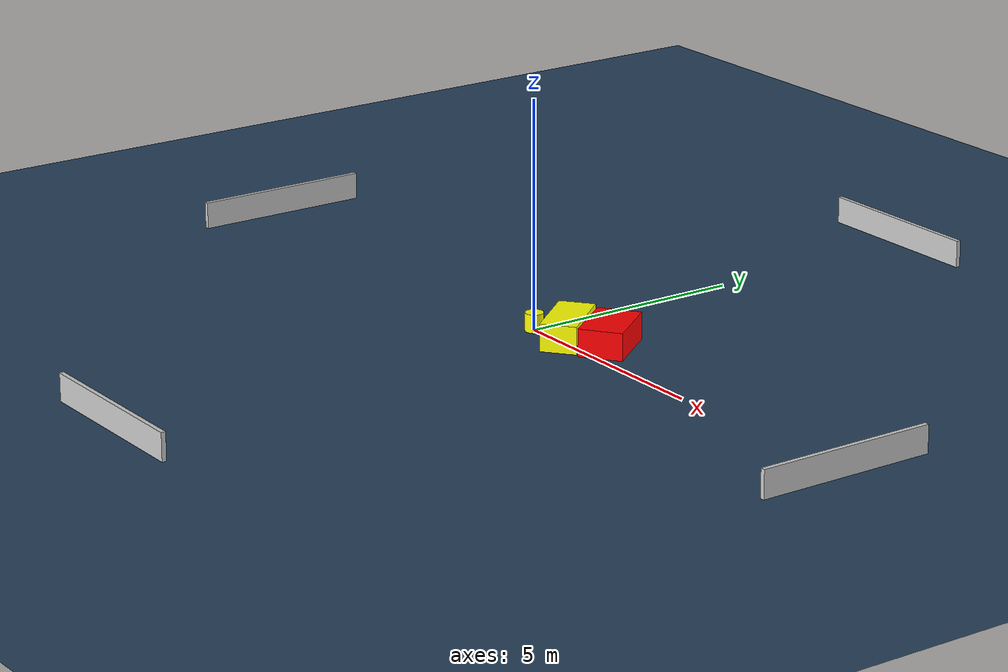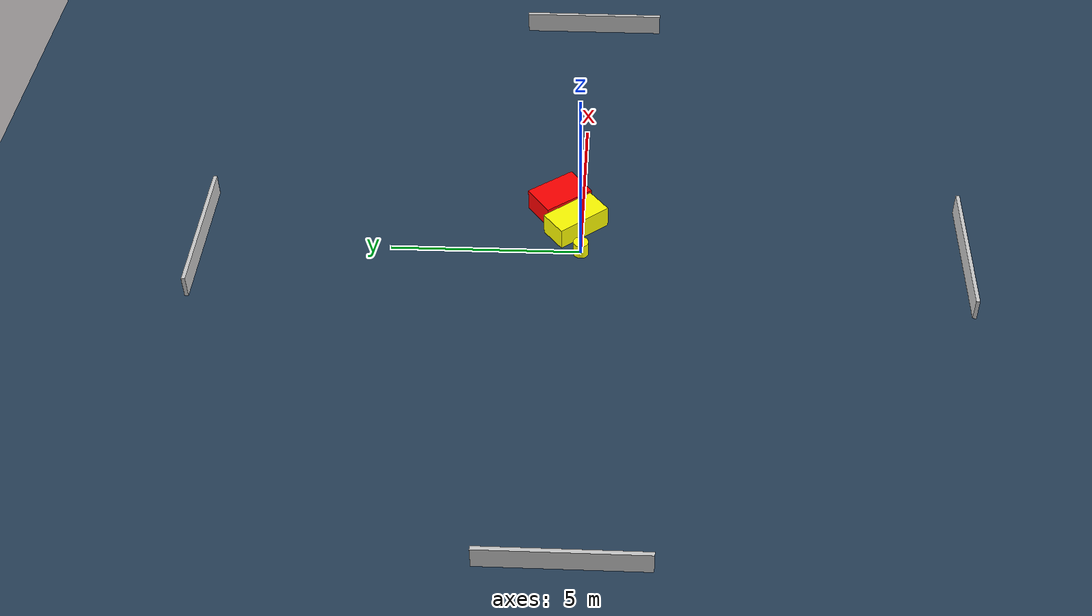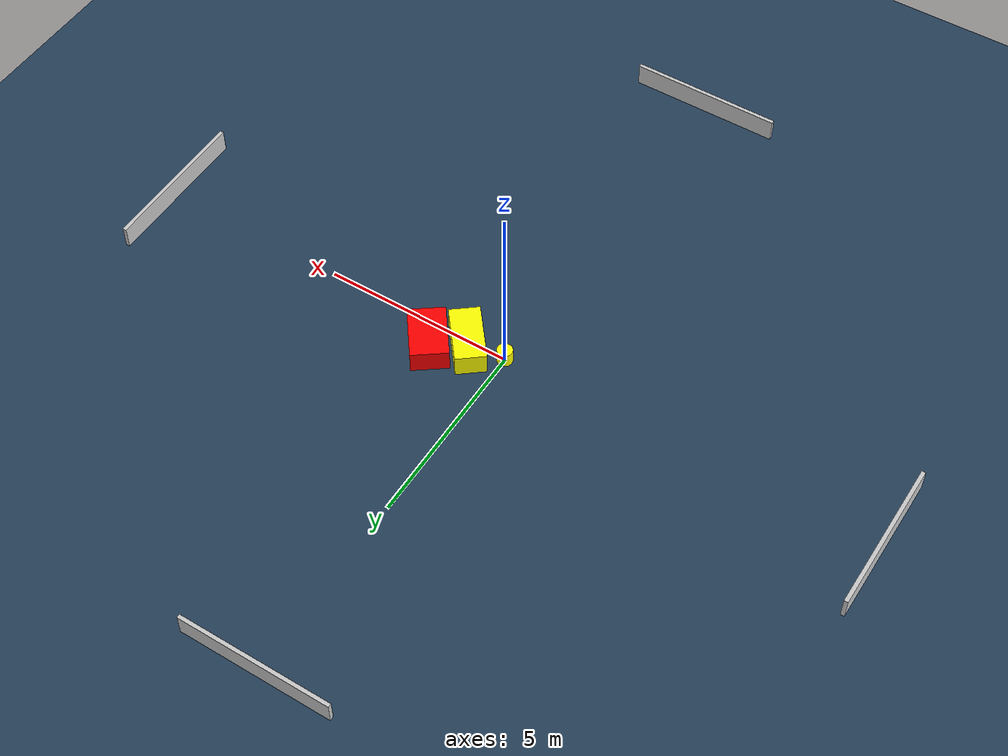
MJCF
<?xml version="1.0" ?>
<mujoco model="generated_environment">
  <option timestep="0.01" integrator="RK4" cone="elliptic"/>
  <default>
    <geom density="1"/>
  </default>
  <asset>
    <texture builtin="gradient" height="3072" name="skybox" rgb1="0.3 0.5 0.7" rgb2="0 0 0" type="skybox" width="512"/>
    <texture builtin="checker" height="300" name="groundplane" rgb1="0.2 0.3 0.4" rgb2="0.1 0.2 0.3" type="2d" width="300"/>
    <material name="groundplane" reflectance="0.2" texrepeat="5 5" texture="groundplane"/>
  </asset>
  <worldbody>
    <light dir="0 0 -1" directional="true" pos="0 0 1.5"/>
    <geom condim="3" friction="0.5 0.005 0.001" material="groundplane" name="floor" pos="0 0 0" size="0 0 0.05" type="plane"/>
    <body name="walls">
      <geom name="wall_1" condim="4" pos="-10.0 0.0 0.3" rgba="0.800000011920929 0.800000011920929 0.800000011920929 1.0" size="0.05 2.0 0.3" type="box"/>
      <geom name="wall_2" condim="4" pos="10.0 0.0 0.3" rgba="0.800000011920929 0.800000011920929 0.800000011920929 1.0" size="0.05 2.0 0.3" type="box"/>
      <geom name="wall_3" condim="4" pos="0.0 -10.0 0.3" rgba="0.800000011920929 0.800000011920929 0.800000011920929 1.0" size="2.0 0.05 0.3" type="box"/>
      <geom name="wall_4" condim="4" pos="0.0 10.0 0.3" rgba="0.800000011920929 0.800000011920929 0.800000011920929 1.0" size="2.0 0.05 0.3" type="box"/>
    </body>
    <body name="robot">
      <joint name="joint_x" type="slide" pos="0 0 0" axis="1 0 0"/>
      <joint name="joint_y" type="slide" pos="0 0 0" axis="0 1 0"/>
      <geom name="robot" type="cylinder" pos="0.0 0.0 0.2" size="0.2 0.2 0.0" mass="5.0" friction="1.0 0.005 0.0001" condim="4" rgba="1.0 1.0 0.0 1.0"/>
    </body>
    <body name="obstacle_1_movable">
      <geom name="obstacle_1_movable" condim="4" pos="0.9529005597025593 0.16825406028008175 0.3" euler="0 0 128.8274543065719" friction="0.0 0.005 0.001" rgba="1.0 1.0 0.0 1.0" size="0.7642196984653304 0.39261129446943266 0.3" type="box" mass="0.1"/>
      <joint type="free"/>
    </body>
    <body name="obstacle_2_static">
      <geom name="obstacle_2_static" condim="4" pos="1.7871192419166726 0.6317812777581656 0.3" euler="0 0 126.77134376829412" friction="0.0 0.005 0.001" rgba="1.0 0.0 0.0 1.0" size="0.7058442422284075 0.47701309273096193 0.3" type="box"/>
    </body>
  </worldbody>
  <actuator>
    <motor name="actuator_x" joint="joint_x" gear="1" ctrlrange="-1 1"/>
    <motor name="actuator_y" joint="joint_y" gear="1" ctrlrange="-1 1"/>
  </actuator>
</mujoco>
